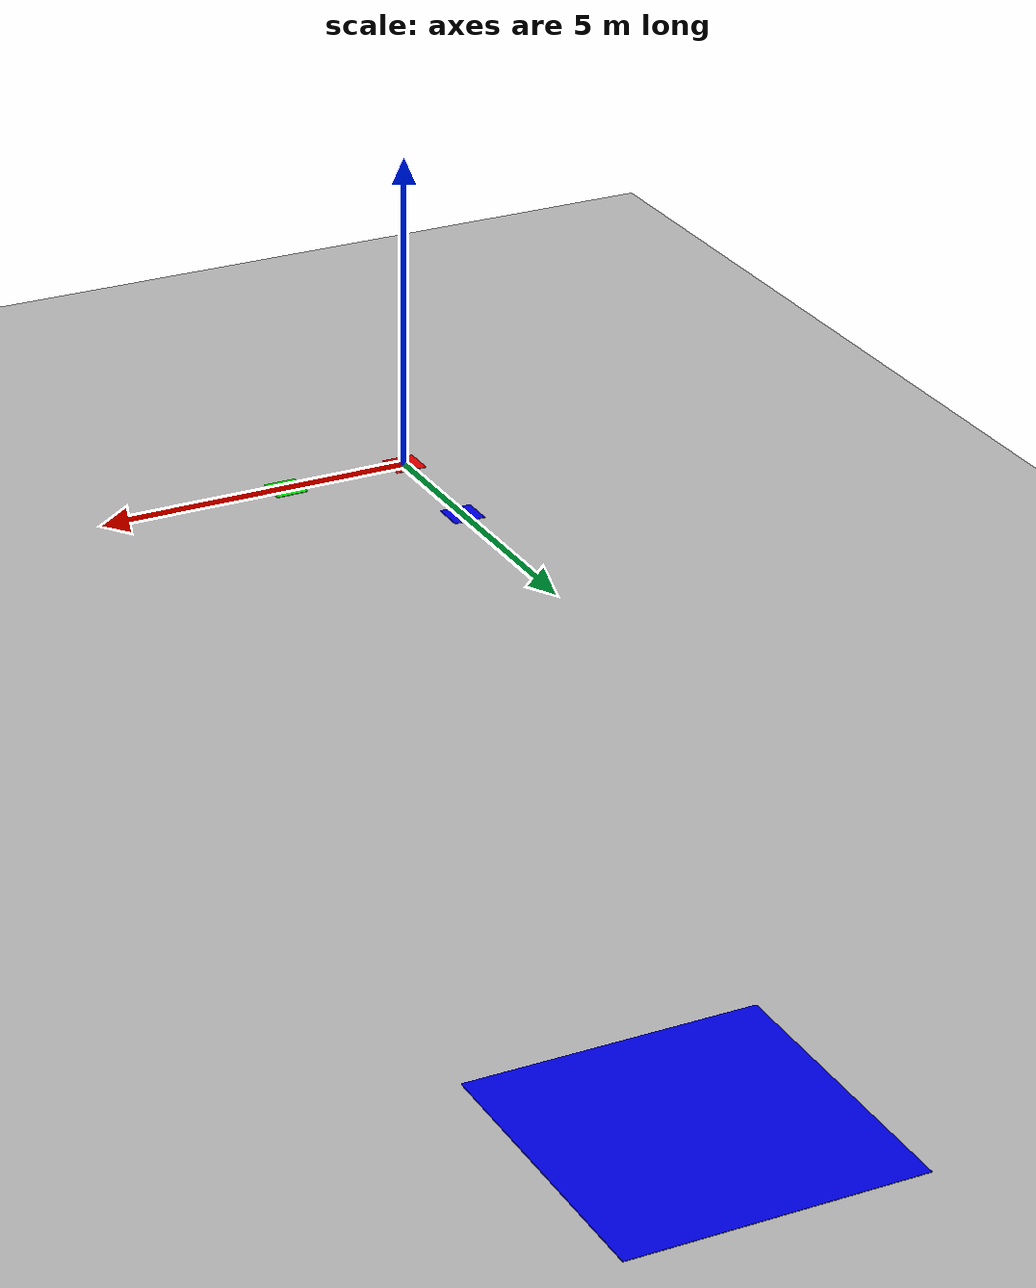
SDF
<?xml version="1.0" encoding="UTF-8"?>
<sdf version="1.9">
  <world name="frictionless_kth">
    <physics name='default_physics' default='0' type='ode'>
      <gravity>0 0 -9.8066</gravity>
      <ode>
        <solver>
          <type>quick</type>
          <iters>10</iters>
          <sor>1.3</sor>
          <use_dynamic_moi_rescaling>0</use_dynamic_moi_rescaling>
        </solver>
        <constraints>
          <cfm>0</cfm>
          <erp>0.2</erp>
          <contact_max_correcting_vel>100</contact_max_correcting_vel>
          <contact_surface_layer>0.001</contact_surface_layer>
        </constraints>
      </ode>
      <max_step_size>0.004</max_step_size>
      <real_time_factor>1</real_time_factor>
      <real_time_update_rate>250</real_time_update_rate>
      <magnetic_field>6.0e-6 2.3e-5 -4.2e-5</magnetic_field>
    </physics>
    <plugin name="gz::sim::systems::Physics" filename="gz-sim-physics-system"/>
    <plugin name="gz::sim::systems::UserCommands" filename="gz-sim-user-commands-system"/>
    <plugin name="gz::sim::systems::SceneBroadcaster" filename="gz-sim-scene-broadcaster-system"/>
    <plugin name="gz::sim::systems::Contact" filename="gz-sim-contact-system"/>
    <plugin name="gz::sim::systems::Imu" filename="gz-sim-imu-system"/>
    <plugin name="gz::sim::systems::AirPressure" filename="gz-sim-air-pressure-system"/>
    <plugin name="gz::sim::systems::ApplyLinkWrench" filename="gz-sim-apply-link-wrench-system"/>
    <plugin name="gz::sim::systems::NavSat" filename="gz-sim-navsat-system"/>
    <plugin name="gz::sim::systems::Sensors" filename="gz-sim-sensors-system">
      <render_engine>ogre2</render_engine>
    </plugin>
    <gui fullscreen="false">
      <!-- 3D scene -->
      <plugin filename="MinimalScene" name="3D View">
        <gz-gui>
          <title>3D View</title>
          <property type="bool" key="showTitleBar">false</property>
          <property type="string" key="state">docked</property>
        </gz-gui>
        <engine>ogre2</engine>
        <scene>scene</scene>
        <ambient_light>0.4 0.4 0.4</ambient_light>
        <background_color>0.8 0.8 0.8</background_color>
        <camera_pose>5 9 25 0 1.57 3.14159</camera_pose>
        <camera_clip>
          <near>0.25</near>
          <far>25000</far>
        </camera_clip>
      </plugin>
      <!-- Plugins that add functionality to the scene -->
      <plugin filename="EntityContextMenuPlugin" name="Entity context menu">
        <gz-gui>
          <property key="state" type="string">floating</property>
          <property key="width" type="double">5</property>
          <property key="height" type="double">5</property>
          <property key="showTitleBar" type="bool">false</property>
        </gz-gui>
      </plugin>
      <plugin filename="GzSceneManager" name="Scene Manager">
        <gz-gui>
          <property key="resizable" type="bool">false</property>
          <property key="width" type="double">5</property>
          <property key="height" type="double">5</property>
          <property key="state" type="string">floating</property>
          <property key="showTitleBar" type="bool">false</property>
        </gz-gui>
      </plugin>

      <plugin filename="ImageDisplay" name="Static Camera View">
        <gz-gui>
          <property key="state" type="string">floating</property>
          <property key="width" type="double">640</property>
          <property key="height" type="double">360</property>
        </gz-gui>
        <topic>/world/frictionless_kth/model/static_camera_1/link/link/sensor/camera/image</topic>
      </plugin>

      <plugin filename="InteractiveViewControl" name="Interactive view control">
        <gz-gui>
          <property key="resizable" type="bool">false</property>
          <property key="width" type="double">5</property>
          <property key="height" type="double">5</property>
          <property key="state" type="string">floating</property>
          <property key="showTitleBar" type="bool">false</property>
        </gz-gui>
      </plugin>
      <plugin filename="CameraTracking" name="Camera Tracking">
        <gz-gui>
          <property key="resizable" type="bool">false</property>
          <property key="width" type="double">5</property>
          <property key="height" type="double">5</property>
          <property key="state" type="string">floating</property>
          <property key="showTitleBar" type="bool">false</property>
        </gz-gui>
      </plugin>
      <plugin filename="MarkerManager" name="Marker manager">
        <gz-gui>
          <property key="resizable" type="bool">false</property>
          <property key="width" type="double">5</property>
          <property key="height" type="double">5</property>
          <property key="state" type="string">floating</property>
          <property key="showTitleBar" type="bool">false</property>
        </gz-gui>
      </plugin>
      <plugin filename="SelectEntities" name="Select Entities">
        <gz-gui>
          <anchors target="Select entities">
            <line own="right" target="right"/>
            <line own="top" target="top"/>
          </anchors>
          <property key="resizable" type="bool">false</property>
          <property key="width" type="double">5</property>
          <property key="height" type="double">5</property>
          <property key="state" type="string">floating</property>
          <property key="showTitleBar" type="bool">false</property>
        </gz-gui>
      </plugin>
      <plugin filename="VisualizationCapabilities" name="Visualization Capabilities">
        <gz-gui>
          <property key="resizable" type="bool">false</property>
          <property key="width" type="double">5</property>
          <property key="height" type="double">5</property>
          <property key="state" type="string">floating</property>
          <property key="showTitleBar" type="bool">false</property>
        </gz-gui>
      </plugin>
      <plugin filename="Spawn" name="Spawn Entities">
        <gz-gui>
          <anchors target="Select entities">
            <line own="right" target="right"/>
            <line own="top" target="top"/>
          </anchors>
          <property key="resizable" type="bool">false</property>
          <property key="width" type="double">5</property>
          <property key="height" type="double">5</property>
          <property key="state" type="string">floating</property>
          <property key="showTitleBar" type="bool">false</property>
        </gz-gui>
      </plugin>
      <plugin name="World control" filename="WorldControl">
        <gz-gui>
          <title>World control</title>
          <property type="bool" key="showTitleBar">0</property>
          <property type="bool" key="resizable">0</property>
          <property type="double" key="height">72</property>
          <property type="double" key="width">121</property>
          <property type="double" key="z">1</property>
          <property type="string" key="state">floating</property>
          <anchors target="3D View">
            <line own="left" target="left"/>
            <line own="bottom" target="bottom"/>
          </anchors>
        </gz-gui>
        <play_pause>1</play_pause>
        <step>1</step>
        <start_paused>1</start_paused>
      </plugin>
      <plugin name="World stats" filename="WorldStats">
        <gz-gui>
          <title>World stats</title>
          <property type="bool" key="showTitleBar">0</property>
          <property type="bool" key="resizable">0</property>
          <property type="double" key="height">110</property>
          <property type="double" key="width">290</property>
          <property type="double" key="z">1</property>
          <property type="string" key="state">floating</property>
          <anchors target="3D View">
            <line own="right" target="right"/>
            <line own="bottom" target="bottom"/>
          </anchors>
        </gz-gui>
        <sim_time>1</sim_time>
        <real_time>1</real_time>
        <real_time_factor>1</real_time_factor>
        <iterations>1</iterations>
      </plugin>
      <plugin name="Entity tree" filename="EntityTree"/>
    </gui>
    <gravity>0 0 -9.8</gravity>
    <magnetic_field>6e-06 2.3e-05 -4.2e-05</magnetic_field>
    <atmosphere type="adiabatic"/>
    <scene>
      <grid>true</grid>
      <ambient>0.4 0.4 0.4 1</ambient>
      <background>0.7 0.7 0.7 1</background>
      <shadows>true</shadows>
    </scene>
    <model name="ground_plane">
      <static>true</static>
      <link name="link">
        <collision name="collision">
          <geometry>
            <plane>
              <normal>0 0 1</normal>
              <size>1 1</size>
            </plane>
          </geometry>
          <surface>
            <friction>
              <ode/>
            </friction>
            <bounce/>
            <contact/>
          </surface>
        </collision>
        <visual name="visual">
          <geometry>
            <plane>
              <normal>0 0 1</normal>
              <size>100 100</size>
            </plane>
          </geometry>
          <material>
            <ambient>0.8 0.8 0.8 1</ambient>
            <diffuse>0.8 0.8 0.8 1</diffuse>
            <specular>0.8 0.8 0.8 1</specular>
          </material>
        </visual>
        <pose>0 0 0 0 -0 0</pose>
        <inertial>
          <pose>0 0 0 0 -0 0</pose>
          <mass>1</mass>
          <inertia>
            <ixx>1</ixx>
            <ixy>0</ixy>
            <ixz>0</ixz>
            <iyy>1</iyy>
            <iyz>0</iyz>
            <izz>1</izz>
          </inertia>
        </inertial>
        <enable_wind>false</enable_wind>
      </link>
      <pose>0 0 0 0 -0 0</pose>
      <self_collide>false</self_collide>
    </model>
    <light name="sunUTC" type="directional">
      <pose>0 0 500 0 -0 0</pose>
      <cast_shadows>true</cast_shadows>
      <intensity>1</intensity>
      <direction>0.001 0.625 -0.78</direction>
      <diffuse>0.904 0.904 0.904 1</diffuse>
      <specular>0.271 0.271 0.271 1</specular>
      <attenuation>
        <range>2000</range>
        <linear>0</linear>
        <constant>1</constant>
        <quadratic>0</quadratic>
      </attenuation>
      <spot>
        <inner_angle>0</inner_angle>
        <outer_angle>0</outer_angle>
        <falloff>0</falloff>
      </spot>
    </light>

    <model name="static_camera_1">
      <static>true</static>
      <link name="link">
        <pose>0 0 0 0 0 0</pose>

        <sensor name="camera" type="camera">
          <pose>5 9 25 0 1.57 3.14159</pose>

          <camera>
            <horizontal_fov>1.047</horizontal_fov>
            <image>
              <width>1280</width>
              <height>720</height>
              <format>R8G8B8</format>
            </image>
            <clip>
              <near>0.1</near>
              <far>1000</far>
            </clip>
          </camera>

          <always_on>true</always_on>
          <update_rate>30</update_rate>
          <visualize>true</visualize>
        </sensor>
      </link>
    </model>

    <!-- Add coordinate markers -->
    <model name="origin_marker">
      <static>true</static>
      <link name="link">
        <visual name="red_square">
          <geometry>
            <box>
              <size>0.5 0.5 0.01</size>
            </box>
          </geometry>
          <material>
            <diffuse>1 0 0 1</diffuse>
          </material>
          <pose>0 0 0.005 0 0 0</pose>
        </visual>
      </link>
    </model>

    <model name="x_marker">
      <static>true</static>
      <link name="link">
        <visual name="green_square">
          <geometry>
            <box>
              <size>0.5 0.5 0.01</size>
            </box>
          </geometry>
          <material>
            <diffuse>0 1 0 1</diffuse>
          </material>
          <pose>2 0 0.005 0 0 0</pose>
        </visual>
      </link>
    </model>

    <model name="y_marker">
      <static>true</static>
      <link name="link">
        <visual name="blue_square">
          <geometry>
            <box>
              <size>0.5 0.5 0.01</size>
            </box>
          </geometry>
          <material>
            <diffuse>0 0 1 1</diffuse>
          </material>
          <pose> 0 2 0.005 0 0 0</pose>
        </visual>
      </link>
    </model>

    <model name="goal_marker">
      <static>true</static>
      <link name="link">
        <visual name="blue_square">
          <geometry>
            <box>
              <size>4 4 0.01</size>
            </box>
          </geometry>
          <material>
            <diffuse>0 0 1 1</diffuse>
          </material>
          <pose> 5 18 0.005 0 0 0</pose>
        </visual>
      </link>
    </model>

    <spherical_coordinates>
      <surface_model>EARTH_WGS84</surface_model>
      <world_frame_orientation>ENU</world_frame_orientation>
      <latitude_deg>47.397971057728974</latitude_deg>
      <longitude_deg> 8.546163739800146</longitude_deg>
      <elevation>0</elevation>
    </spherical_coordinates>
  </world>
</sdf>
